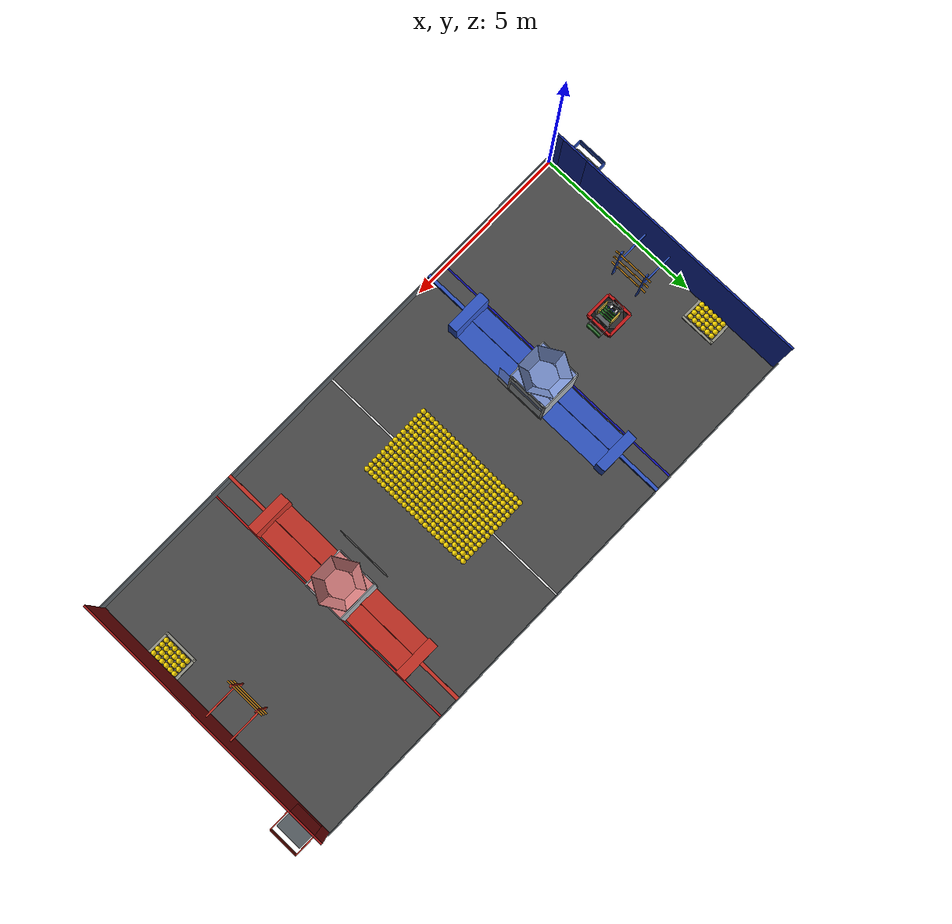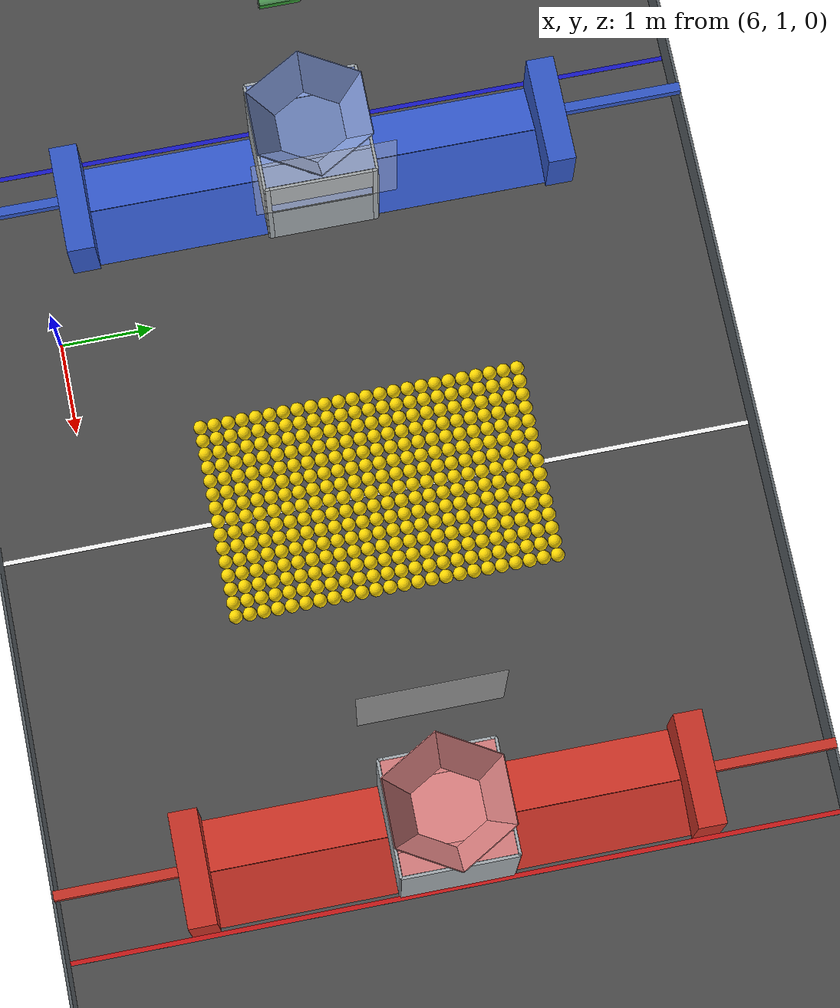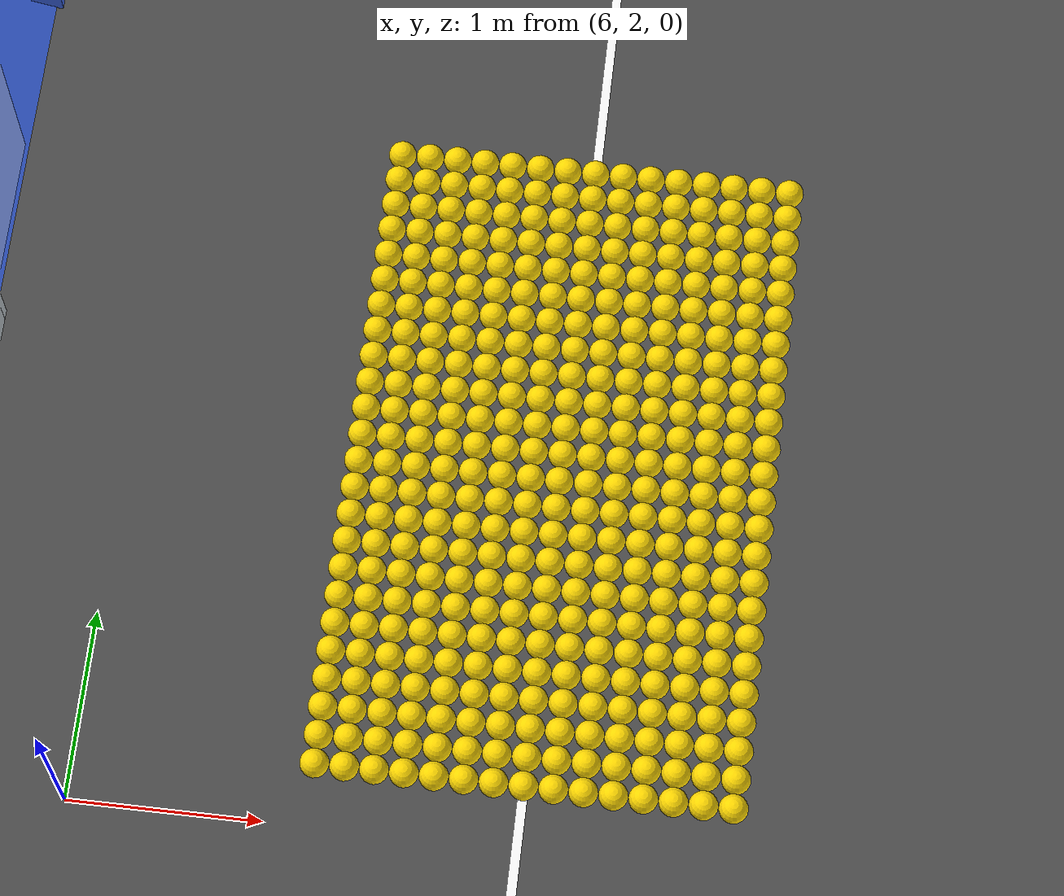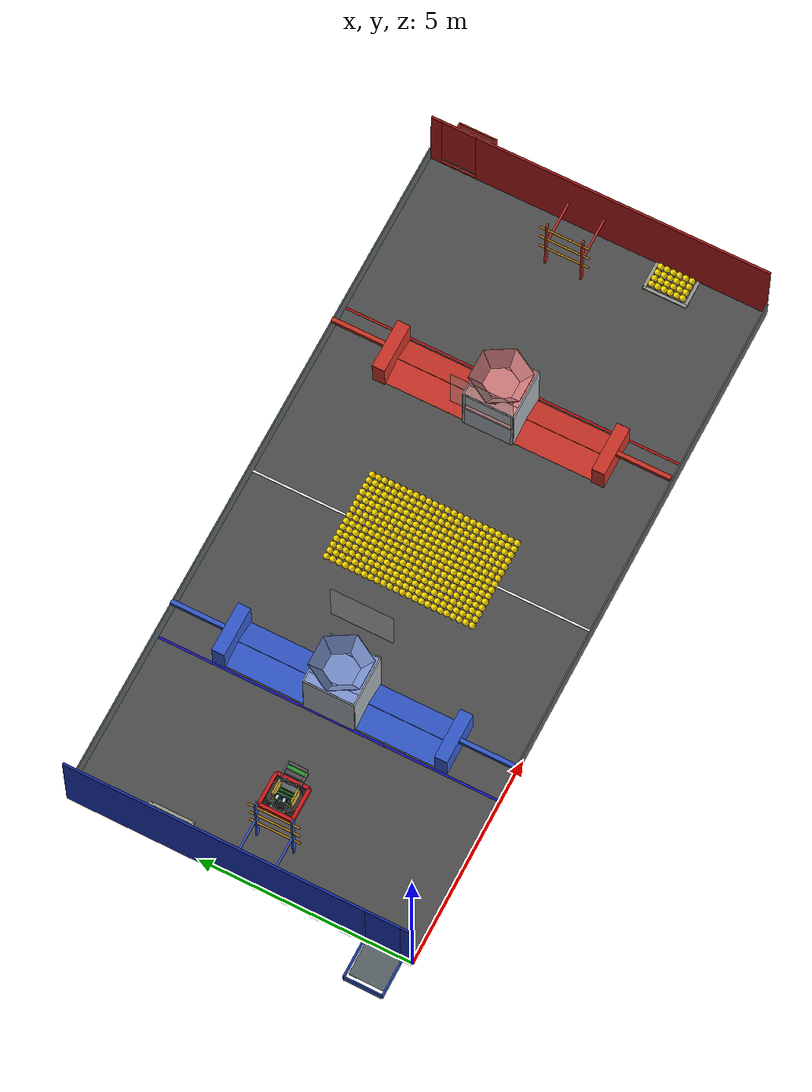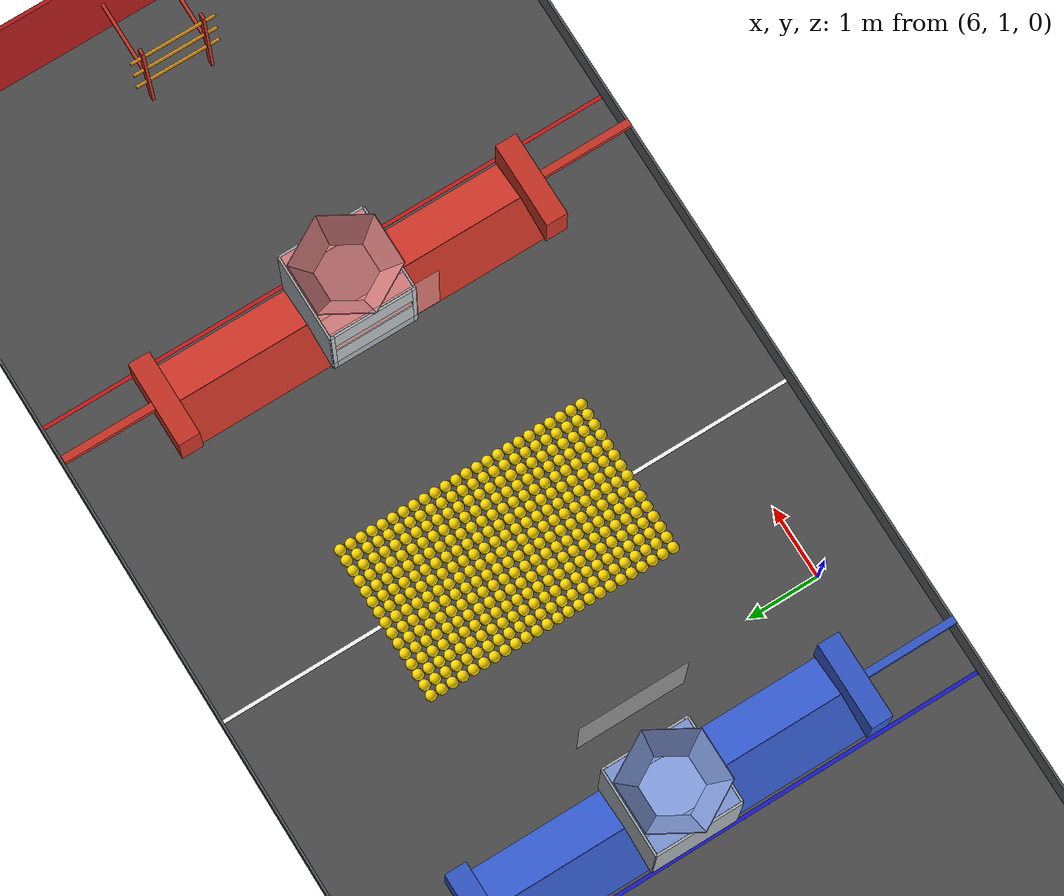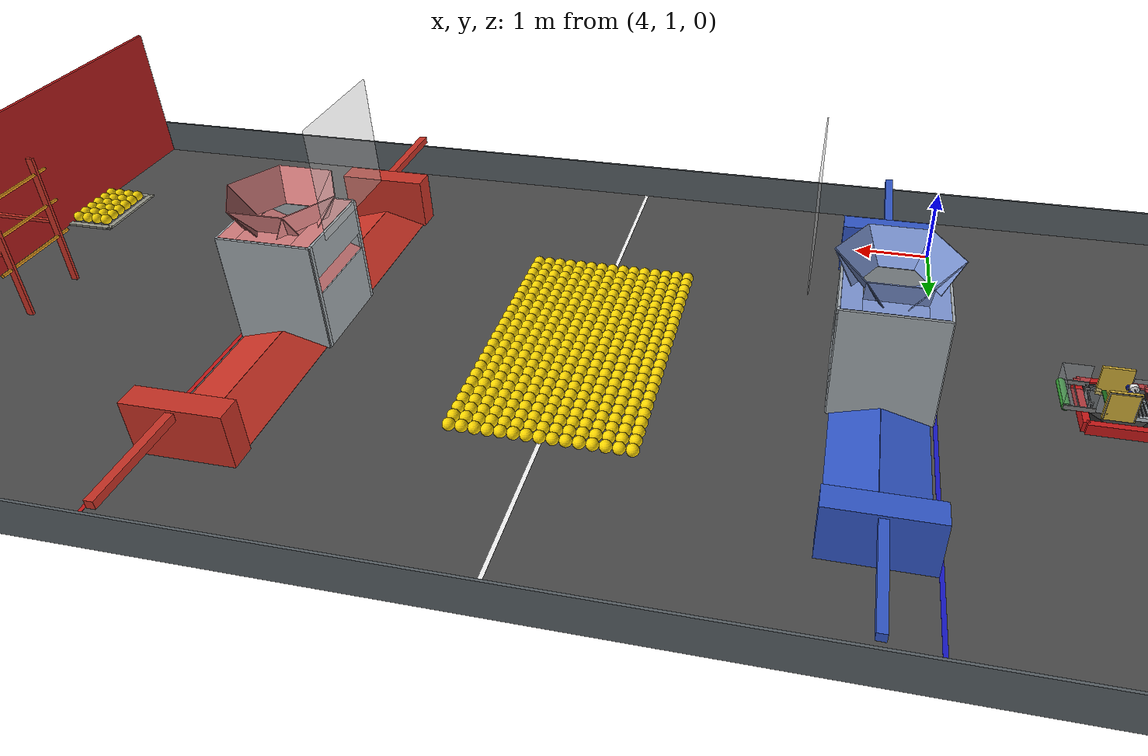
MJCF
<mujoco model="frc_swerve_robot">
  <compiler angle="radian" autolimits="true"/>

  <option gravity="0 0 -9.81" timestep="0.005" solver="PGS" iterations="50"/>

  <visual>
    <headlight ambient="0.5 0.5 0.5"/>
  </visual>

  <default>
    <joint damping="0.1" armature="0.001"/>
    <geom friction="0.3 0.005 0.0001" condim="3"/>
    <motor ctrllimited="true" ctrlrange="-100 100"/>
    <default class="fuel">
      <geom friction="0.8 0.005 0.0001" condim="3"/>
    </default>
  </default>

  <asset>
    <material name="chassis_mat" rgba="0.2 0.2 0.2 1"/>
    <material name="bumper_mat" rgba="0.8 0.1 0.1 1"/>
    <material name="wheel_mat" rgba="0.1 0.1 0.1 1"/>
    <material name="module_mat" rgba="0.4 0.4 0.4 1"/>
    <material name="roller_mat" rgba="0.2 0.6 0.2 1"/>
    <material name="bar_mat" rgba="0.5 0.5 0.5 1"/>
    <material name="polycarb_mat" rgba="0.8 0.85 0.9 0.3"/>
    <material name="aluminum_mat" rgba="0.75 0.78 0.8 1"/>
    <material name="dark_green_mat" rgba="0.1 0.4 0.1 1"/>
    <material name="dark_blue_mat" rgba="0.1 0.15 0.6 1"/>
    <material name="red_mat" rgba="0.8 0.1 0.1 1"/>
    <material name="white_mat" rgba="0.95 0.95 0.95 1"/>
    <material name="gold_mat" rgba="0.83 0.69 0.22 1"/>
    <material name="led_mat" rgba="0.1 0.1 0.1 1" emission="1"/>
    <!-- Right-triangle prism: right angle at origin, legs along +X and +Y, 3" legs, chassis height -->
    <mesh name="corner_wedge"
          vertex="0 0 -0.0254  0.18 0 -0.0254  0 0.18 -0.0254  0 0 0.0254  0.18 0 0.0254  0 0.18 0.0254"
          face="0 2 1  3 4 5  0 3 5  0 5 2  0 1 4  0 4 3  1 2 5  1 5 4"/>
  </asset>

  <include file="field.xml"/>

  <worldbody>
    <!-- Robot base (chassis) - freejoint allows 6DOF movement -->
    <!-- Starting position: blue alliance zone, centered on field width -->
    <body name="chassis" pos="2.0 4.035 0.07">
      <freejoint name="chassis_joint"/>

      <!-- IMU site for sensors -->
      <site name="imu_site" pos="0 0 0" size="0.01"/>

      <!-- Chassis geometry (27.5" x 27.5" x ~4" frame) -->
      <geom name="chassis_geom" type="box" size="0.349 0.349 0.027"
            mass="34.6" material="chassis_mat" contype="2" conaffinity="1"/>

      <!-- Corner wedges (swerve module mounts) -->
      <geom name="corner_fl" type="mesh" mesh="corner_wedge" pos="0.349 0.349 0.0524"
            euler="0 0 3.14159" mass="0.2" material="wheel_mat" contype="0" conaffinity="0"/>
      <geom name="corner_fr" type="mesh" mesh="corner_wedge" pos="0.349 -0.349 0.0524"
            euler="0 0 1.5708" mass="0.2" material="wheel_mat" contype="0" conaffinity="0"/>
      <geom name="corner_bl" type="mesh" mesh="corner_wedge" pos="-0.349 0.349 0.0524"
            euler="0 0 -1.5708" mass="0.2" material="wheel_mat" contype="0" conaffinity="0"/>
      <geom name="corner_br" type="mesh" mesh="corner_wedge" pos="-0.349 -0.349 0.0524"
            mass="0.2" material="wheel_mat" contype="0" conaffinity="0"/>

      <!-- Bumpers (3.25" thick, 5.5" tall, top 3" above chassis) -->
      <geom name="bumper_front" type="box" pos="0.39 0 0.03128" size="0.04 0.39 0.06993"
            mass="2" material="bumper_mat" friction="0.4 0.005 0.0001" contype="2" conaffinity="1"/>
      <geom name="bumper_back" type="box" pos="-0.39 0 0.03128" size="0.04 0.39 0.06993"
            mass="2" material="bumper_mat" friction="0.4 0.005 0.0001" contype="2" conaffinity="1"/>
      <geom name="bumper_left" type="box" pos="0 0.39 0.03128" size="0.39 0.04 0.06993"
            mass="2" material="bumper_mat" friction="0.4 0.005 0.0001" contype="2" conaffinity="1"/>
      <geom name="bumper_right" type="box" pos="0 -0.39 0.03128" size="0.39 0.04 0.06993"
            mass="2" material="bumper_mat" friction="0.4 0.005 0.0001" contype="2" conaffinity="1"/>

      <!-- Front Left Module -->
      <body name="fl_module" pos="0.28 0.28 -0.02">
        <joint name="fl_steer" type="hinge" axis="0 0 1" damping="1.0" armature="0.011" frictionloss="2.0"/>
        <geom name="fl_housing" type="cylinder" size="0.04 0.03"
              mass="1" material="wheel_mat" contype="0" conaffinity="0"/>
        <body name="fl_wheel_body" pos="0 0 0">
          <joint name="fl_drive" type="hinge" axis="0 1 0" damping="0.01" armature="0.0025"/>
          <geom name="fl_wheel" type="cylinder" size="0.05 0.02"
                euler="1.5708 0 0" mass="0.5" material="wheel_mat" friction="1.5 0.005 0.0001" contype="2" conaffinity="1"/>
        </body>
      </body>

      <!-- Front Right Module -->
      <body name="fr_module" pos="0.28 -0.28 -0.02">
        <joint name="fr_steer" type="hinge" axis="0 0 1" damping="1.0" armature="0.011" frictionloss="2.0"/>
        <geom name="fr_housing" type="cylinder" size="0.04 0.03"
              mass="1" material="wheel_mat" contype="0" conaffinity="0"/>
        <body name="fr_wheel_body" pos="0 0 0">
          <joint name="fr_drive" type="hinge" axis="0 1 0" damping="0.01" armature="0.0025"/>
          <geom name="fr_wheel" type="cylinder" size="0.05 0.02"
                euler="1.5708 0 0" mass="0.5" material="wheel_mat" friction="1.5 0.005 0.0001" contype="2" conaffinity="1"/>
        </body>
      </body>

      <!-- Back Left Module -->
      <body name="bl_module" pos="-0.28 0.28 -0.02">
        <joint name="bl_steer" type="hinge" axis="0 0 1" damping="1.0" armature="0.011" frictionloss="2.0"/>
        <geom name="bl_housing" type="cylinder" size="0.04 0.03"
              mass="1" material="wheel_mat" contype="0" conaffinity="0"/>
        <body name="bl_wheel_body" pos="0 0 0">
          <joint name="bl_drive" type="hinge" axis="0 1 0" damping="0.01" armature="0.0025"/>
          <geom name="bl_wheel" type="cylinder" size="0.05 0.02"
                euler="1.5708 0 0" mass="0.5" material="wheel_mat" friction="1.5 0.005 0.0001" contype="2" conaffinity="1"/>
        </body>
      </body>

      <!-- Back Right Module -->
      <body name="br_module" pos="-0.28 -0.28 -0.02">
        <joint name="br_steer" type="hinge" axis="0 0 1" damping="1.0" armature="0.011" frictionloss="2.0"/>
        <geom name="br_housing" type="cylinder" size="0.04 0.03"
              mass="1" material="wheel_mat" contype="0" conaffinity="0"/>
        <body name="br_wheel_body" pos="0 0 0">
          <joint name="br_drive" type="hinge" axis="0 1 0" damping="0.01" armature="0.0025"/>
          <geom name="br_wheel" type="cylinder" size="0.05 0.02"
                euler="1.5708 0 0" mass="0.5" material="wheel_mat" friction="1.5 0.005 0.0001" contype="2" conaffinity="1"/>
        </body>
      </body>

      <!-- Hopper rollers: 4 coupled rollers along Y axis -->
      <body name="hopper_roller_1" pos="-0.121 -0.0285 0.056">
        <joint name="hopper_roller_1_joint" type="hinge" axis="0 1 0" damping="0.001" armature="0.001"/>
        <geom name="hopper_roller_1_geom" type="cylinder" size="0.0255 0.2035"
              euler="1.5708 0 0" mass="0.65" material="dark_green_mat" friction="2.0 0.005 0.0001" contype="2" conaffinity="1"/>
      </body>
      <body name="hopper_roller_2" pos="-0.045 -0.0285 0.063">
        <joint name="hopper_roller_2_joint" type="hinge" axis="0 1 0" damping="0.001" armature="0.001"/>
        <geom name="hopper_roller_2_geom" type="cylinder" size="0.0255 0.2035"
              euler="1.5708 0 0" mass="0.65" material="dark_green_mat" friction="2.0 0.005 0.0001" contype="2" conaffinity="1"/>
      </body>
      <body name="hopper_roller_3" pos="0.031 -0.0285 0.070">
        <joint name="hopper_roller_3_joint" type="hinge" axis="0 1 0" damping="0.001" armature="0.001"/>
        <geom name="hopper_roller_3_geom" type="cylinder" size="0.0255 0.2035"
              euler="1.5708 0 0" mass="0.65" material="dark_green_mat" friction="2.0 0.005 0.0001" contype="2" conaffinity="1"/>
      </body>
      <body name="hopper_roller_4" pos="0.107 -0.0285 0.077">
        <joint name="hopper_roller_4_joint" type="hinge" axis="0 1 0" damping="0.001" armature="0.001"/>
        <geom name="hopper_roller_4_geom" type="cylinder" size="0.0255 0.2035"
              euler="1.5708 0 0" mass="0.65" material="dark_green_mat" friction="2.0 0.005 0.0001" contype="2" conaffinity="1"/>
      </body>

      <!-- Hopper walls -->
      <geom name="hopper_wall_left" type="box" pos="0.02 0.1925 0.2225"
            size="0.177 0.0175 0.1955" mass="1.0" material="gold_mat" contype="2" conaffinity="1"/>
      <geom name="hopper_wall_right" type="box" pos="0.02 -0.2495 0.2225"
            size="0.177 0.0175 0.1955" mass="1.0" material="gold_mat" contype="2" conaffinity="1"/>

      <!-- LED strips on outside of hopper walls (inverted U shape) -->
      <!-- Left wall LEDs (outer face y=0.21, strips 2mm out) -->
      <geom name="led_left_0" type="box" pos="-0.142 0.212 0.2225"
            size="0.005 0.002 0.1805" mass="0.003" material="led_mat" contype="0" conaffinity="0"/>
      <geom name="led_left_1" type="box" pos="0.02 0.212 0.403"
            size="0.167 0.002 0.005" mass="0.003" material="led_mat" contype="0" conaffinity="0"/>
      <geom name="led_left_2" type="box" pos="0.182 0.212 0.2225"
            size="0.005 0.002 0.1805" mass="0.003" material="led_mat" contype="0" conaffinity="0"/>
      <!-- Right wall LEDs (outer face y=-0.267, strips 2mm out) -->
      <geom name="led_right_0" type="box" pos="-0.142 -0.269 0.2225"
            size="0.005 0.002 0.1805" mass="0.003" material="led_mat" contype="0" conaffinity="0"/>
      <geom name="led_right_1" type="box" pos="0.02 -0.269 0.403"
            size="0.167 0.002 0.005" mass="0.003" material="led_mat" contype="0" conaffinity="0"/>
      <geom name="led_right_2" type="box" pos="0.182 -0.269 0.2225"
            size="0.005 0.002 0.1805" mass="0.003" material="led_mat" contype="0" conaffinity="0"/>

      <!-- Polycarbonate plate between hopper and intake -->
      <geom name="hopper_intake_plate" type="box" pos="0.2116 -0.0254 0.1143"
            size="0.0615 0.2413 0.0016" mass="0.3" material="polycarb_mat" contype="2" conaffinity="1"/>

      <!-- Shooter base: U-shaped mount on back of frame -->
      <geom name="shooter_base_back" type="box" pos="-0.3363 0 0.0524"
            size="0.0127 0.166 0.0254" mass="0.5" material="aluminum_mat" contype="2" conaffinity="1"/>
      <geom name="shooter_base_left" type="box" pos="-0.2475 0.146 0.0524"
            size="0.1015 0.02 0.0254" mass="0.5" material="aluminum_mat" contype="2" conaffinity="1"/>
      <geom name="shooter_base_right" type="box" pos="-0.2475 -0.146 0.0524"
            size="0.1015 0.02 0.0254" mass="0.5" material="aluminum_mat" contype="2" conaffinity="1"/>

      <!-- Shooter walls: two side walls + center divider, 0.33m tall from chassis top -->
      <geom name="shooter_wall_left" type="box" pos="-0.2475 0.166 0.192"
            size="0.1015 0.003 0.165" mass="0.3" material="polycarb_mat" contype="2" conaffinity="1"/>
      <geom name="shooter_wall_right" type="box" pos="-0.2475 -0.166 0.192"
            size="0.1015 0.003 0.165" mass="0.3" material="polycarb_mat" contype="2" conaffinity="1"/>
      <geom name="shooter_wall_center" type="box" pos="-0.2475 0 0.192"
            size="0.1015 0.003 0.165" mass="0.3" material="polycarb_mat" contype="2" conaffinity="1"/>

      <!-- Shooter feeding wheels: 4 wheels (2 per channel), all coupled -->
      <body name="shooter_feed_inner_left" pos="-0.098 0.0285 0.247">
        <joint name="shooter_feed_inner_left_joint" type="hinge" axis="0 1 0" damping="0.001" armature="0.001"/>
        <geom name="shooter_feed_inner_left_geom" type="cylinder" size="0.0283 0.0125"
              euler="1.5708 0 0" mass="0.036" material="dark_blue_mat" friction="2.0 0.005 0.0001" contype="2" conaffinity="1"/>
      </body>
      <body name="shooter_feed_inner_right" pos="-0.098 -0.0285 0.247">
        <joint name="shooter_feed_inner_right_joint" type="hinge" axis="0 1 0" damping="0.001" armature="0.001"/>
        <geom name="shooter_feed_inner_right_geom" type="cylinder" size="0.0283 0.0125"
              euler="1.5708 0 0" mass="0.036" material="dark_blue_mat" friction="2.0 0.005 0.0001" contype="2" conaffinity="1"/>
      </body>
      <body name="shooter_feed_outer_left" pos="-0.098 0.1371 0.247">
        <joint name="shooter_feed_outer_left_joint" type="hinge" axis="0 1 0" damping="0.001" armature="0.001"/>
        <geom name="shooter_feed_outer_left_geom" type="cylinder" size="0.0283 0.0125"
              euler="1.5708 0 0" mass="0.036" material="dark_blue_mat" friction="2.0 0.005 0.0001" contype="2" conaffinity="1"/>
      </body>
      <body name="shooter_feed_outer_right" pos="-0.098 -0.1371 0.247">
        <joint name="shooter_feed_outer_right_joint" type="hinge" axis="0 1 0" damping="0.001" armature="0.001"/>
        <geom name="shooter_feed_outer_right_geom" type="cylinder" size="0.0283 0.0125"
              euler="1.5708 0 0" mass="0.036" material="dark_blue_mat" friction="2.0 0.005 0.0001" contype="2" conaffinity="1"/>
      </body>

      <!-- Shooter flywheels: one per channel, each independently driven -->
      <body name="shooter_flywheel_left" pos="-0.142 0.083 0.285">
        <joint name="shooter_flywheel_left_joint" type="hinge" axis="0 1 0" damping="0.00001" armature="0.001"/>
        <geom name="shooter_flywheel_left_geom" type="cylinder" size="0.05 0.026"
              euler="1.5708 0 0" mass="0.54" material="white_mat" friction="2.0 0.005 0.0001" contype="2" conaffinity="1"/>
      </body>
      <body name="shooter_flywheel_right" pos="-0.142 -0.083 0.285">
        <joint name="shooter_flywheel_right_joint" type="hinge" axis="0 1 0" damping="0.00001" armature="0.001"/>
        <geom name="shooter_flywheel_right_geom" type="cylinder" size="0.05 0.026"
              euler="1.5708 0 0" mass="0.54" material="white_mat" friction="2.0 0.005 0.0001" contype="2" conaffinity="1"/>
      </body>

      <!-- Shooter churros: 10 track guides from left to right wall -->
      <geom name="shooter_churro_1" type="cylinder" pos="-0.160 0 0.086"
            size="0.007 0.166" euler="1.5708 0 0" mass="0.1" material="wheel_mat" contype="2" conaffinity="1"/>
      <geom name="shooter_churro_2" type="cylinder" pos="-0.198 0 0.086"
            size="0.007 0.166" euler="1.5708 0 0" mass="0.1" material="wheel_mat" contype="2" conaffinity="1"/>
      <geom name="shooter_churro_3" type="cylinder" pos="-0.234 0 0.101"
            size="0.007 0.166" euler="1.5708 0 0" mass="0.1" material="wheel_mat" contype="2" conaffinity="1"/>
      <geom name="shooter_churro_4" type="cylinder" pos="-0.266 0 0.123"
            size="0.007 0.166" euler="1.5708 0 0" mass="0.1" material="wheel_mat" contype="2" conaffinity="1"/>
      <geom name="shooter_churro_5" type="cylinder" pos="-0.294 0 0.151"
            size="0.007 0.166" euler="1.5708 0 0" mass="0.1" material="wheel_mat" contype="2" conaffinity="1"/>
      <geom name="shooter_churro_6" type="cylinder" pos="-0.315 0 0.184"
            size="0.007 0.166" euler="1.5708 0 0" mass="0.1" material="wheel_mat" contype="2" conaffinity="1"/>
      <geom name="shooter_churro_7" type="cylinder" pos="-0.328 0 0.221"
            size="0.007 0.166" euler="1.5708 0 0" mass="0.1" material="wheel_mat" contype="2" conaffinity="1"/>
      <geom name="shooter_churro_8" type="cylinder" pos="-0.335 0 0.260"
            size="0.007 0.166" euler="1.5708 0 0" mass="0.1" material="wheel_mat" contype="2" conaffinity="1"/>
      <geom name="shooter_churro_9" type="cylinder" pos="-0.333 0 0.299"
            size="0.007 0.166" euler="1.5708 0 0" mass="0.1" material="wheel_mat" contype="2" conaffinity="1"/>
      <geom name="shooter_churro_10" type="cylinder" pos="-0.323 0 0.337"
            size="0.007 0.166" euler="1.5708 0 0" mass="0.1" material="wheel_mat" contype="2" conaffinity="1"/>

      <!-- Shooter feed axle -->
      <geom name="shooter_feed_axle" type="cylinder" pos="-0.098 0 0.247"
            size="0.007 0.166" euler="1.5708 0 0" mass="0.3" material="wheel_mat" contype="2" conaffinity="1"/>

      <!-- Shooter flywheel axle -->
      <geom name="shooter_flywheel_axle" type="cylinder" pos="-0.142 0 0.285"
            size="0.007 0.166" euler="1.5708 0 0" mass="0.3" material="wheel_mat" contype="2" conaffinity="1"/>

      <!-- Intake support blocks: 2x1" aluminum, 5.875" tall from chassis top -->
      <geom name="intake_support_left" type="box" pos="0.324 0.1207 0.1016"
            size="0.0254 0.0127 0.0746" mass="0.4" material="bar_mat" contype="2" conaffinity="1"/>
      <geom name="intake_support_right" type="box" pos="0.324 -0.1207 0.1016"
            size="0.0254 0.0127 0.0746" mass="0.4" material="bar_mat" contype="2" conaffinity="1"/>

      <!-- Intake assembly: pivots on hinge 0.025m behind frame edge, 4.875" above chassis top -->
      <body name="intake" pos="0.324 0 0.151">
        <joint name="intake_hinge" type="hinge" axis="0 1 0" damping="0.5" armature="0.005" limited="true" range="-1.5708 0.21"/>

        <!-- Axle bar through shields -->
        <geom name="intake_axle_bar" type="cylinder" pos="0 0 0"
              size="0.01 0.2275" euler="1.5708 0 0" mass="0.8" material="wheel_mat" contype="2" conaffinity="1"/>

        <!-- Roller: spinning cylinder -->
        <body name="intake_roller" pos="0.279 0 0">
          <joint name="intake_roller_joint" type="hinge" axis="0 1 0" damping="0.001" armature="0.001"/>
          <geom name="intake_roller_geom" type="cylinder" size="0.0508 0.2275"
                euler="1.5708 0 0" mass="0.5" material="roller_mat" friction="2.0 0.005 0.0001" contype="2" conaffinity="1"/>
        </body>

        <!-- Backing bar -->
        <geom name="intake_backing_bar" type="cylinder" pos="0.127 0 -0.021"
              size="0.00735 0.2275" euler="1.5708 0 0" mass="1.5" material="bar_mat" contype="2" conaffinity="1"/>

        <!-- Side bars -->
        <geom name="intake_bar_left" type="box" pos="0.1395 0.235 0.003"
              size="0.1715 0.005 0.03" mass="0.6" material="bar_mat" contype="2" conaffinity="1"/>
        <geom name="intake_bar_right" type="box" pos="0.1395 -0.235 0.003"
              size="0.1715 0.005 0.03" mass="0.6" material="bar_mat" contype="2" conaffinity="1"/>

        <!-- Polycarbonate side shields -->
        <geom name="intake_shield_left" type="box" pos="0.1395 0.2285 0.152"
              size="0.1715 0.0015 0.119" mass="0.3" material="polycarb_mat" contype="2" conaffinity="1"/>
        <geom name="intake_shield_right" type="box" pos="0.1395 -0.2285 0.152"
              size="0.1715 0.0015 0.119" mass="0.3" material="polycarb_mat" contype="2" conaffinity="1"/>

        <!-- Front polycarbonate shield -->
        <geom name="intake_shield_front" type="box" pos="0.3125 0 0.152"
              size="0.0015 0.2275 0.119" mass="0.4" material="polycarb_mat" contype="2" conaffinity="1"/>
      </body>

    </body>
  </worldbody>

  <!-- Actuators: voltage-controlled motors -->
  <actuator>
    <motor name="fl_steer_motor" joint="fl_steer" gear="1"/>
    <motor name="fr_steer_motor" joint="fr_steer" gear="1"/>
    <motor name="bl_steer_motor" joint="bl_steer" gear="1"/>
    <motor name="br_steer_motor" joint="br_steer" gear="1"/>

    <motor name="fl_drive_motor" joint="fl_drive" gear="1"/>
    <motor name="fr_drive_motor" joint="fr_drive" gear="1"/>
    <motor name="bl_drive_motor" joint="bl_drive" gear="1"/>
    <motor name="br_drive_motor" joint="br_drive" gear="1"/>

    <motor name="intake_hinge_motor" joint="intake_hinge" gear="1"/>
    <motor name="intake_roller_motor" joint="intake_roller_joint" gear="1"/>

    <motor name="hopper_roller_motor" joint="hopper_roller_1_joint" gear="1"/>

    <motor name="shooter_feed_motor" joint="shooter_feed_inner_left_joint" gear="1"/>

    <motor name="shooter_flywheel_motor" joint="shooter_flywheel_left_joint" gear="1"/>
  </actuator>

  <!-- Sensors for feedback to WPILib -->
  <sensor>
    <jointpos name="fl_steer_pos" joint="fl_steer"/>
    <jointpos name="fr_steer_pos" joint="fr_steer"/>
    <jointpos name="bl_steer_pos" joint="bl_steer"/>
    <jointpos name="br_steer_pos" joint="br_steer"/>

    <jointpos name="fl_drive_pos" joint="fl_drive"/>
    <jointpos name="fr_drive_pos" joint="fr_drive"/>
    <jointpos name="bl_drive_pos" joint="bl_drive"/>
    <jointpos name="br_drive_pos" joint="br_drive"/>

    <jointvel name="fl_steer_vel" joint="fl_steer"/>
    <jointvel name="fr_steer_vel" joint="fr_steer"/>
    <jointvel name="bl_steer_vel" joint="bl_steer"/>
    <jointvel name="br_steer_vel" joint="br_steer"/>

    <jointvel name="fl_drive_vel" joint="fl_drive"/>
    <jointvel name="fr_drive_vel" joint="fr_drive"/>
    <jointvel name="bl_drive_vel" joint="bl_drive"/>
    <jointvel name="br_drive_vel" joint="br_drive"/>

    <gyro name="chassis_gyro" site="imu_site"/>
    <accelerometer name="chassis_accel" site="imu_site"/>
  </sensor>

  <equality>
    <joint joint1="hopper_roller_1_joint" joint2="hopper_roller_2_joint" polycoef="0 1 0 0 0"/>
    <joint joint1="hopper_roller_1_joint" joint2="hopper_roller_3_joint" polycoef="0 1 0 0 0"/>
    <joint joint1="hopper_roller_1_joint" joint2="hopper_roller_4_joint" polycoef="0 1 0 0 0"/>
    <joint joint1="shooter_feed_inner_left_joint" joint2="shooter_feed_inner_right_joint" polycoef="0 1 0 0 0"/>
    <joint joint1="shooter_feed_inner_left_joint" joint2="shooter_feed_outer_left_joint" polycoef="0 1 0 0 0"/>
    <joint joint1="shooter_feed_inner_left_joint" joint2="shooter_feed_outer_right_joint" polycoef="0 1 0 0 0"/>
    <joint joint1="shooter_flywheel_left_joint" joint2="shooter_flywheel_right_joint" polycoef="0 1 0 0 0"/>
  </equality>

  <contact>
  </contact>

</mujoco>
